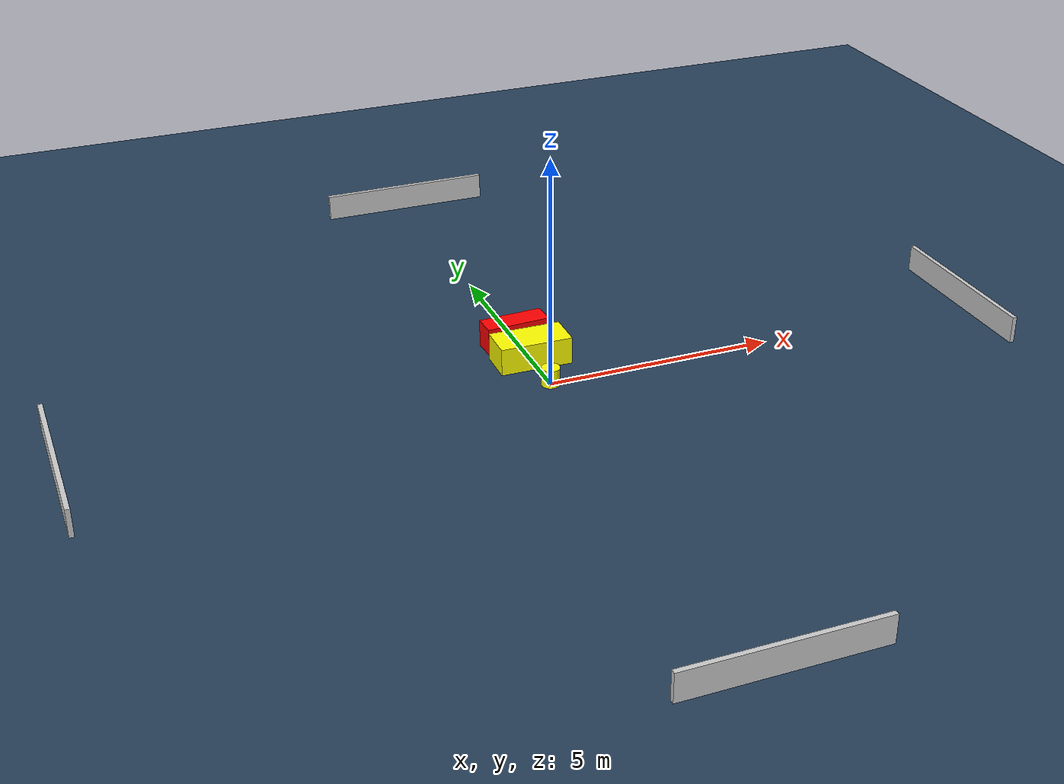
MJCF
<?xml version="1.0" ?>
<mujoco model="generated_environment">
  <option timestep="0.01" integrator="RK4" cone="elliptic"/>
  <default>
    <geom density="1"/>
  </default>
  <asset>
    <texture builtin="gradient" height="3072" name="skybox" rgb1="0.3 0.5 0.7" rgb2="0 0 0" type="skybox" width="512"/>
    <texture builtin="checker" height="300" name="groundplane" rgb1="0.2 0.3 0.4" rgb2="0.1 0.2 0.3" type="2d" width="300"/>
    <material name="groundplane" reflectance="0.2" texrepeat="5 5" texture="groundplane"/>
  </asset>
  <worldbody>
    <light dir="0 0 -1" directional="true" pos="0 0 1.5"/>
    <geom condim="3" friction="0.5 0.005 0.001" material="groundplane" name="floor" pos="0 0 0" size="0 0 0.05" type="plane"/>
    <body name="walls">
      <geom name="wall_1" condim="4" pos="-10.0 0.0 0.3" rgba="0.800000011920929 0.800000011920929 0.800000011920929 1.0" size="0.05 2.0 0.3" type="box"/>
      <geom name="wall_2" condim="4" pos="10.0 0.0 0.3" rgba="0.800000011920929 0.800000011920929 0.800000011920929 1.0" size="0.05 2.0 0.3" type="box"/>
      <geom name="wall_3" condim="4" pos="0.0 -10.0 0.3" rgba="0.800000011920929 0.800000011920929 0.800000011920929 1.0" size="2.0 0.05 0.3" type="box"/>
      <geom name="wall_4" condim="4" pos="0.0 10.0 0.3" rgba="0.800000011920929 0.800000011920929 0.800000011920929 1.0" size="2.0 0.05 0.3" type="box"/>
    </body>
    <body name="robot">
      <joint name="joint_x" type="slide" pos="0 0 0" axis="1 0 0"/>
      <joint name="joint_y" type="slide" pos="0 0 0" axis="0 1 0"/>
      <geom name="robot" type="cylinder" pos="0.0 0.0 0.2" size="0.2 0.2 0.0" mass="5.0" friction="1.0 0.005 0.0001" condim="4" rgba="1.0 1.0 0.0 1.0"/>
    </body>
    <body name="obstacle_1_movable">
      <geom name="obstacle_1_movable" condim="4" pos="-0.019291525239037394 1.1017832655687483 0.3" euler="0 0 89.20280541287627" friction="0.0 0.005 0.001" rgba="1.0 1.0 0.0 1.0" size="0.3992970924197227 0.7932684072066967 0.3" type="box" mass="0.1"/>
      <joint type="free"/>
    </body>
    <body name="obstacle_2_static">
      <geom name="obstacle_2_static" condim="4" pos="-0.06228981319042244 1.9580039054910006 0.3" euler="0 0 182.91030118653296" friction="0.0 0.005 0.001" rgba="1.0 0.0 0.0 1.0" size="0.7072753316626881 0.2550677498054924 0.3" type="box"/>
    </body>
  </worldbody>
  <actuator>
    <motor name="actuator_x" joint="joint_x" gear="1" ctrlrange="-1 1"/>
    <motor name="actuator_y" joint="joint_y" gear="1" ctrlrange="-1 1"/>
  </actuator>
</mujoco>
